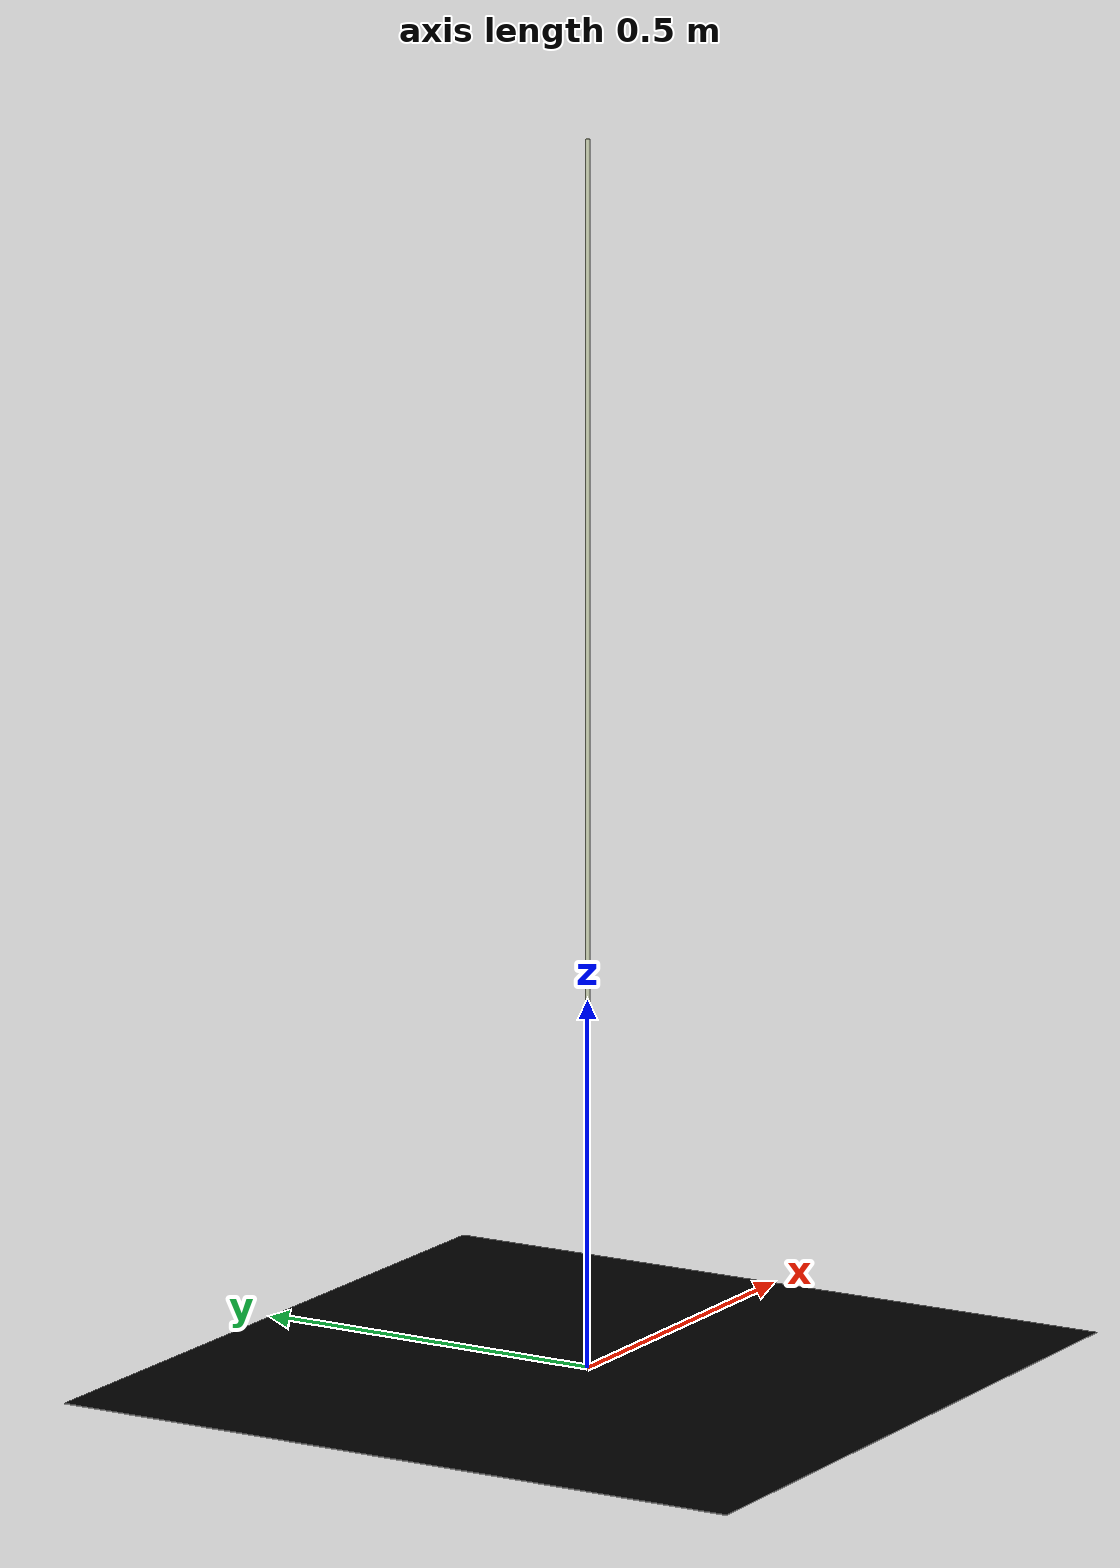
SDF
<?xml version="1.0" ?>
<sdf version="1.4">
  <model name="healthy">
    <static>true</static>
    <link name="pad">
      <collision name="collision">
        <geometry>
          <box>
            <size>1 1 .001</size>
          </box>
        </geometry>
      </collision>
      <visual name="visual">
        <cast_shadows>false</cast_shadows>
        <geometry>
          <box>
            <size>1 1 .001</size>
          </box>
        </geometry>
        <material>
          <script>
            <uri>model://healthy/materials/scripts</uri>
            <uri>model://healthy/materials/textures</uri>
            <name>healthy/ci</name>
          </script>
          <diffuse>0 0 0 1</diffuse>
        </material>
      </visual>
    </link>

    <link name="tube">
      <collision name="collision">
        <pose>0 0 0.8 0 0 0</pose>
        <geometry>
          <mesh>
            <uri>model://tube_9_5mm/meshes/tube_9_5.dae</uri>
            <scale>0.6 0.6 10.526</scale>
          </mesh>
        </geometry>
      </collision>

      <visual name="visual">
        <pose>0 0 0.8 0 0 0</pose>
        <geometry>
          <mesh>
            <uri>model://tube_9_5mm/meshes/tube_9_5.dae</uri>
            <scale>0.6 0.6 10.526</scale>
          </mesh>
        </geometry>
      </visual>

    </link>
  </model>
</sdf>
